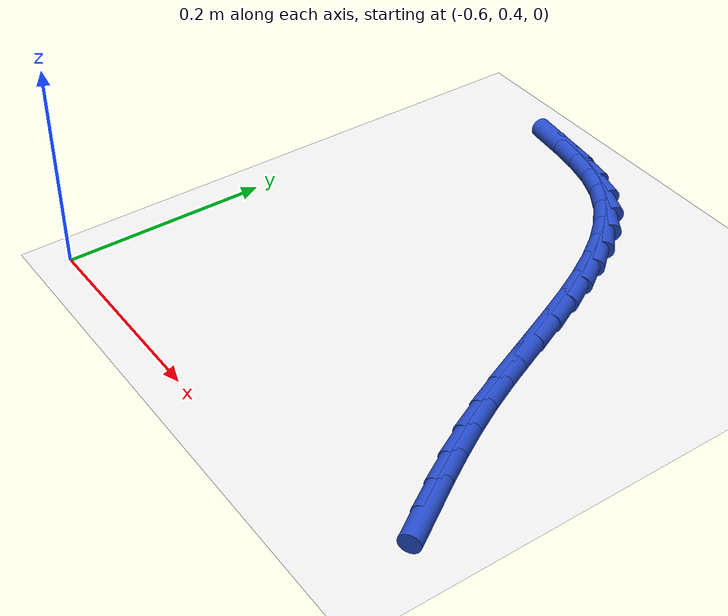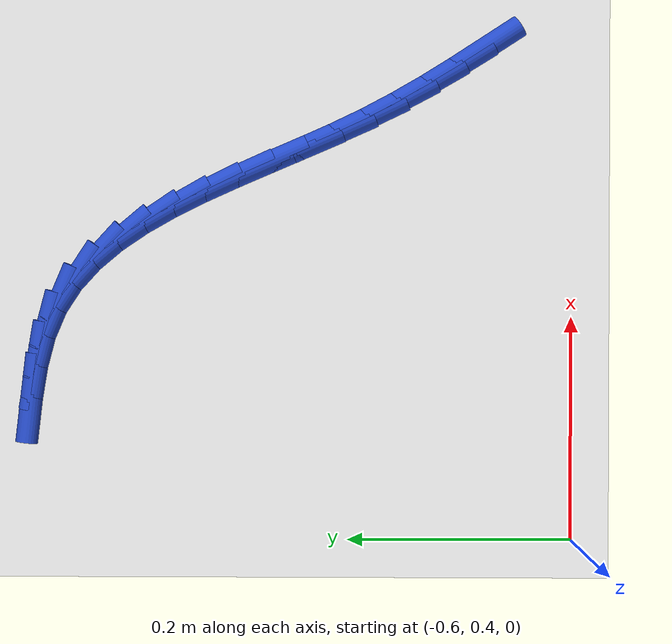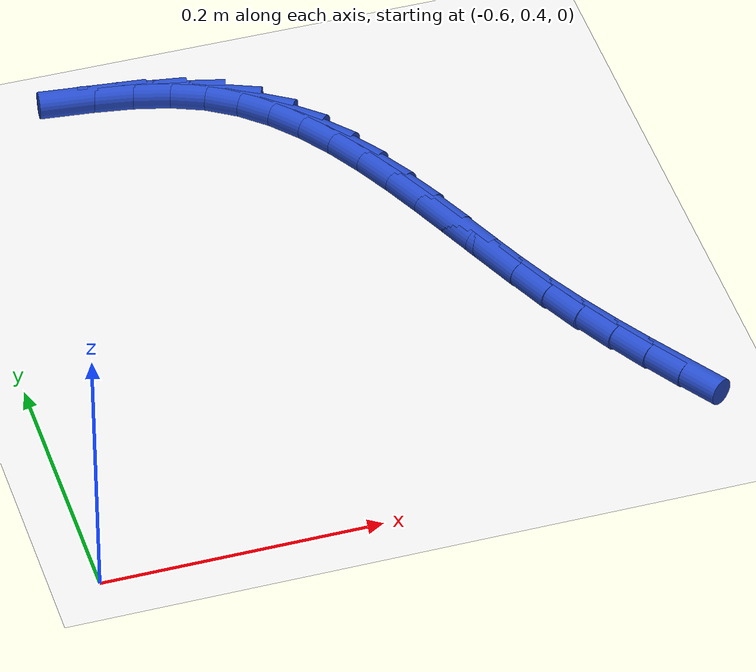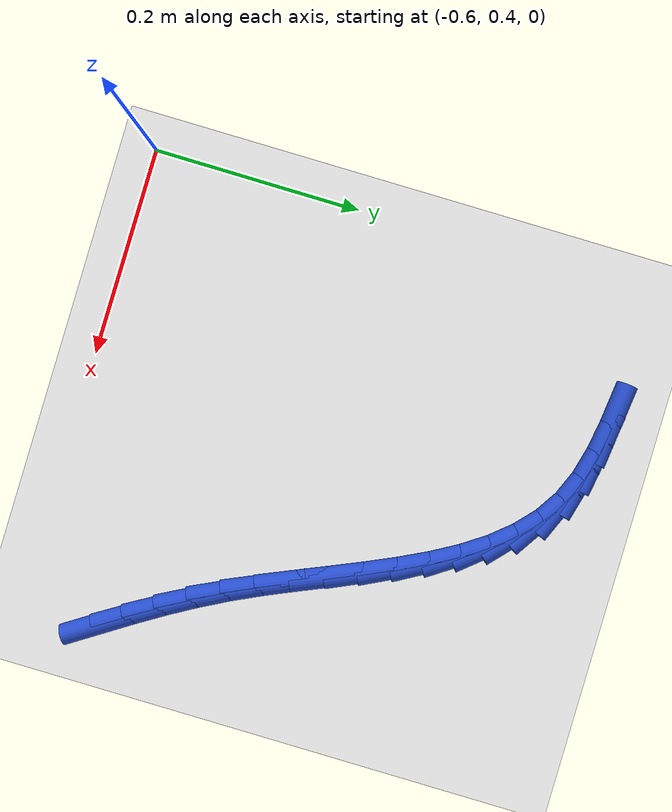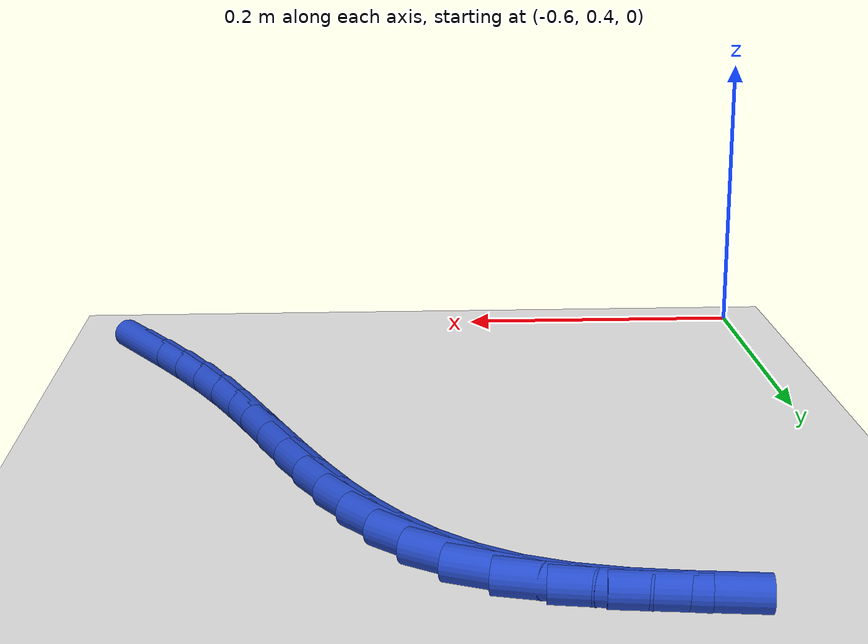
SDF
<sdf version="1.6">
 <world name="default">
  <model name="ground_plane">
   <static>1</static>
   <link name="link">
    <collision name="collision">
     <geometry><plane><normal>0 0 1</normal><size>100 100</size></plane></geometry>
     <surface><friction><ode><mu>100</mu><mu2>50</mu2></ode></friction></surface>
    </collision>
    <visual name="visual">
     <cast_shadows>0</cast_shadows>
     <geometry><plane><normal>0 0 1</normal><size>100 100</size></plane></geometry>
     <material>
      <script><uri>file://media/materials/scripts/gazebo.material</uri><name>Gazebo/WhiteGlow</name></script>
     </material>
    </visual>
   </link>
  </model>
  <model name="line">
   <link name="link_18">
    <pose>-0.16193190110942854 0.4814819971888754 0.01 0 1.57 -0.9938693184062853</pose>
    <collision name="collision">
     <geometry><cylinder><radius>0.01</radius><length>0.08</length></cylinder></geometry>
    </collision>
    <visual name="visual">
     <material>
      <script><name>Gazebo/Blue</name><uri>file://media/materials/scripts/gazebo.material</uri></script>
     </material>
     <geometry><cylinder><radius>0.01</radius><length>0.08</length></cylinder></geometry>
    </visual>
   </link>
   <link name="link_19">
    <pose>-0.17817522726253038 0.5064415785638394 0.01 0 1.57 -1.0156583921871414</pose>
    <collision name="collision">
     <geometry><cylinder><radius>0.01</radius><length>0.08</length></cylinder></geometry>
    </collision>
    <visual name="visual">
     <material>
      <script><name>Gazebo/Blue</name><uri>file://media/materials/scripts/gazebo.material</uri></script>
     </material>
     <geometry><cylinder><radius>0.01</radius><length>0.08</length></cylinder></geometry>
    </visual>
   </link>
   <link name="link_20">
    <pose>-0.19406568252087364 0.5320632086260211 0.01 0 1.57 -1.0453324196126066</pose>
    <collision name="collision">
     <geometry><cylinder><radius>0.01</radius><length>0.08</length></cylinder></geometry>
    </collision>
    <visual name="visual">
     <material>
      <script><name>Gazebo/Blue</name><uri>file://media/materials/scripts/gazebo.material</uri></script>
     </material>
     <geometry><cylinder><radius>0.01</radius><length>0.08</length></cylinder></geometry>
    </visual>
   </link>
   <link name="link_21">
    <pose>-0.2093992637010697 0.5585077219425463 0.01 0 1.57 -1.082420973195867</pose>
    <collision name="collision">
     <geometry><cylinder><radius>0.01</radius><length>0.08</length></cylinder></geometry>
    </collision>
    <visual name="visual">
     <material>
      <script><name>Gazebo/Blue</name><uri>file://media/materials/scripts/gazebo.material</uri></script>
     </material>
     <geometry><cylinder><radius>0.01</radius><length>0.08</length></cylinder></geometry>
    </visual>
   </link>
   <link name="link_22">
    <pose>-0.22397196761973004 0.5859359530805407 0.01 0 1.57 -1.1229950869026593</pose>
    <collision name="collision">
     <geometry><cylinder><radius>0.01</radius><length>0.08</length></cylinder></geometry>
    </collision>
    <visual name="visual">
     <material>
      <script><name>Gazebo/Blue</name><uri>file://media/materials/scripts/gazebo.material</uri></script>
     </material>
     <geometry><cylinder><radius>0.01</radius><length>0.08</length></cylinder></geometry>
    </visual>
   </link>
   <link name="link_23">
    <pose>-0.23765443529940614 0.6144205546130449 0.01 0 1.57 -1.151316150730696</pose>
    <collision name="collision">
     <geometry><cylinder><radius>0.01</radius><length>0.08</length></cylinder></geometry>
    </collision>
    <visual name="visual">
     <material>
      <script><name>Gazebo/Blue</name><uri>file://media/materials/scripts/gazebo.material</uri></script>
     </material>
     <geometry><cylinder><radius>0.01</radius><length>0.08</length></cylinder></geometry>
    </visual>
   </link>
   <link name="link_24">
    <pose>-0.250673143220566 0.6436138078351127 0.01 0 1.57 -1.1637567197288379</pose>
    <collision name="collision">
     <geometry><cylinder><radius>0.01</radius><length>0.08</length></cylinder></geometry>
    </collision>
    <visual name="visual">
     <material>
      <script><name>Gazebo/Blue</name><uri>file://media/materials/scripts/gazebo.material</uri></script>
     </material>
     <geometry><cylinder><radius>0.01</radius><length>0.08</length></cylinder></geometry>
    </visual>
   </link>
   <link name="link_25">
    <pose>-0.26336048458814004 0.6730428678132798 0.01 0 1.57 -1.1607781366515253</pose>
    <collision name="collision">
     <geometry><cylinder><radius>0.01</radius><length>0.08</length></cylinder></geometry>
    </collision>
    <visual name="visual">
     <material>
      <script><name>Gazebo/Blue</name><uri>file://media/materials/scripts/gazebo.material</uri></script>
     </material>
     <geometry><cylinder><radius>0.01</radius><length>0.08</length></cylinder></geometry>
    </visual>
   </link>
   <link name="link_26">
    <pose>-0.2760488703823667 0.7022348686149683 0.01 0 1.57 -1.1419757918669842</pose>
    <collision name="collision">
     <geometry><cylinder><radius>0.01</radius><length>0.08</length></cylinder></geometry>
    </collision>
    <visual name="visual">
     <material>
      <script><name>Gazebo/Blue</name><uri>file://media/materials/scripts/gazebo.material</uri></script>
     </material>
     <geometry><cylinder><radius>0.01</radius><length>0.08</length></cylinder></geometry>
    </visual>
   </link>
   <link name="link_27">
    <pose>-0.2890707115834842 0.7307169443076011 0.01 0 1.57 -1.106033845268915</pose>
    <collision name="collision">
     <geometry><cylinder><radius>0.01</radius><length>0.08</length></cylinder></geometry>
    </collision>
    <visual name="visual">
     <material>
      <script><name>Gazebo/Blue</name><uri>file://media/materials/scripts/gazebo.material</uri></script>
     </material>
     <geometry><cylinder><radius>0.01</radius><length>0.08</length></cylinder></geometry>
    </visual>
   </link>
   <link name="link_28">
    <pose>-0.30275841917173074 0.7580162289586009 0.01 0 1.57 -1.0506958177985353</pose>
    <collision name="collision">
     <geometry><cylinder><radius>0.01</radius><length>0.08</length></cylinder></geometry>
    </collision>
    <visual name="visual">
     <material>
      <script><name>Gazebo/Blue</name><uri>file://media/materials/scripts/gazebo.material</uri></script>
     </material>
     <geometry><cylinder><radius>0.01</radius><length>0.08</length></cylinder></geometry>
    </visual>
   </link>
   <link name="link_29">
    <pose>-0.31744440412734454 0.7836598566353897 0.01 0 1.57 -0.9728523108346533</pose>
    <collision name="collision">
     <geometry><cylinder><radius>0.01</radius><length>0.08</length></cylinder></geometry>
    </collision>
    <visual name="visual">
     <material>
      <script><name>Gazebo/Blue</name><uri>file://media/materials/scripts/gazebo.material</uri></script>
     </material>
     <geometry><cylinder><radius>0.01</radius><length>0.08</length></cylinder></geometry>
    </visual>
   </link>
   <link name="link_30">
    <pose>-0.3334610774305641 0.807174961405391 0.01 0 1.57 -0.8689979100409678</pose>
    <collision name="collision">
     <geometry><cylinder><radius>0.01</radius><length>0.08</length></cylinder></geometry>
    </collision>
    <visual name="visual">
     <material>
      <script><name>Gazebo/Blue</name><uri>file://media/materials/scripts/gazebo.material</uri></script>
     </material>
     <geometry><cylinder><radius>0.01</radius><length>0.08</length></cylinder></geometry>
    </visual>
   </link>
   <link name="link_31">
    <pose>-0.35114085006162743 0.8280886773360269 0.01 0 1.57 -0.7365011632348717</pose>
    <collision name="collision">
     <geometry><cylinder><radius>0.01</radius><length>0.08</length></cylinder></geometry>
    </collision>
    <visual name="visual">
     <material>
      <script><name>Gazebo/Blue</name><uri>file://media/materials/scripts/gazebo.material</uri></script>
     </material>
     <geometry><cylinder><radius>0.01</radius><length>0.08</length></cylinder></geometry>
    </visual>
   </link>
   <link name="link_32">
    <pose>-0.37081613300077276 0.8459281384947198 0.01 0 1.57 -0.5760638978303527</pose>
    <collision name="collision">
     <geometry><cylinder><radius>0.01</radius><length>0.08</length></cylinder></geometry>
    </collision>
    <visual name="visual">
     <material>
      <script><name>Gazebo/Blue</name><uri>file://media/materials/scripts/gazebo.material</uri></script>
     </material>
     <geometry><cylinder><radius>0.01</radius><length>0.08</length></cylinder></geometry>
    </visual>
   </link>
   <link name="link_33">
    <pose>-0.39281933722823864 0.8602204789488929 0.01 0 1.57 -0.398183584581117</pose>
    <collision name="collision">
     <geometry><cylinder><radius>0.01</radius><length>0.08</length></cylinder></geometry>
    </collision>
    <visual name="visual">
     <material>
      <script><name>Gazebo/Blue</name><uri>file://media/materials/scripts/gazebo.material</uri></script>
     </material>
     <geometry><cylinder><radius>0.01</radius><length>0.08</length></cylinder></geometry>
    </visual>
   </link>
   <link name="link_34">
    <pose>-0.41743250955311484 0.8705741022432197 0.01 0 1.57 -0.2515774450017671</pose>
    <collision name="collision">
     <geometry><cylinder><radius>0.01</radius><length>0.08</length></cylinder></geometry>
    </collision>
    <visual name="visual">
     <material>
      <script><name>Gazebo/Blue</name><uri>file://media/materials/scripts/gazebo.material</uri></script>
     </material>
     <geometry><cylinder><radius>0.01</radius><length>0.08</length></cylinder></geometry>
    </visual>
   </link>
   <link name="link_35">
    <pose>-0.4443784538831552 0.8774998268179623 0.01 0 1.57 -0.15820959590631928</pose>
    <collision name="collision">
     <geometry><cylinder><radius>0.01</radius><length>0.08</length></cylinder></geometry>
    </collision>
    <visual name="visual">
     <material>
      <script><name>Gazebo/Blue</name><uri>file://media/materials/scripts/gazebo.material</uri></script>
     </material>
     <geometry><cylinder><radius>0.01</radius><length>0.08</length></cylinder></geometry>
    </visual>
   </link>
   <link name="link_36">
    <pose>-0.4730312536851178 0.8820711792310877 0.01 0 1.57 -0.11052053345426072</pose>
    <collision name="collision">
     <geometry><cylinder><radius>0.01</radius><length>0.08</length></cylinder></geometry>
    </collision>
    <visual name="visual">
     <material>
      <script><name>Gazebo/Blue</name><uri>file://media/materials/scripts/gazebo.material</uri></script>
     </material>
     <geometry><cylinder><radius>0.01</radius><length>0.08</length></cylinder></geometry>
    </visual>
   </link>
  </model>
 </world>
</sdf>
